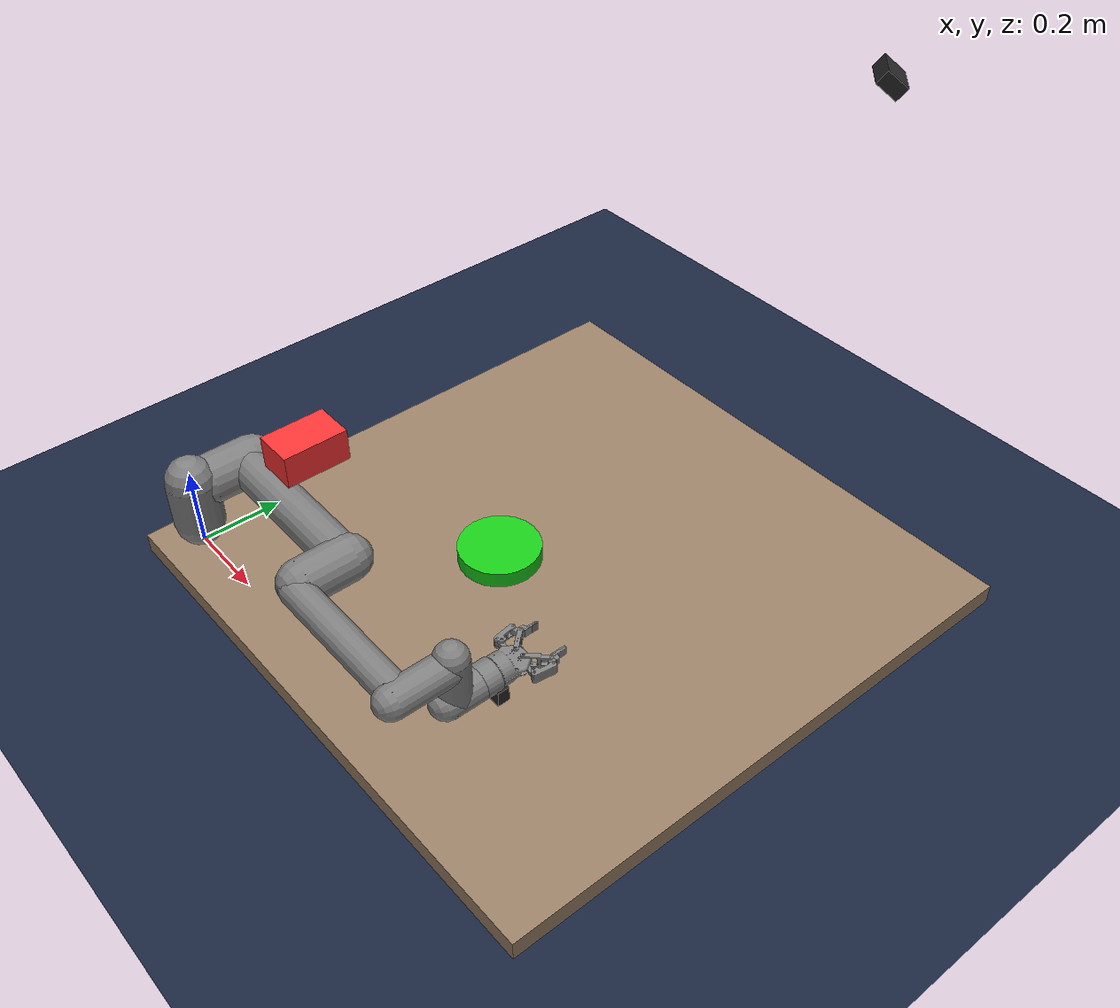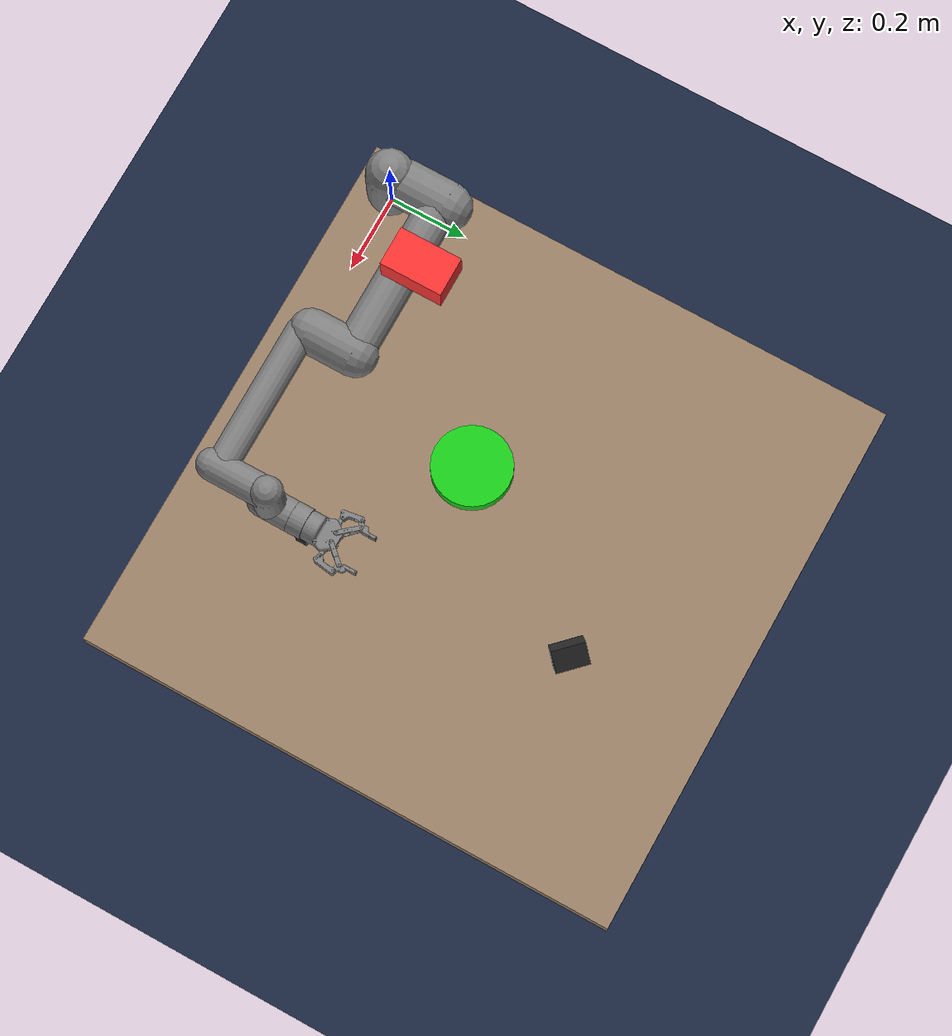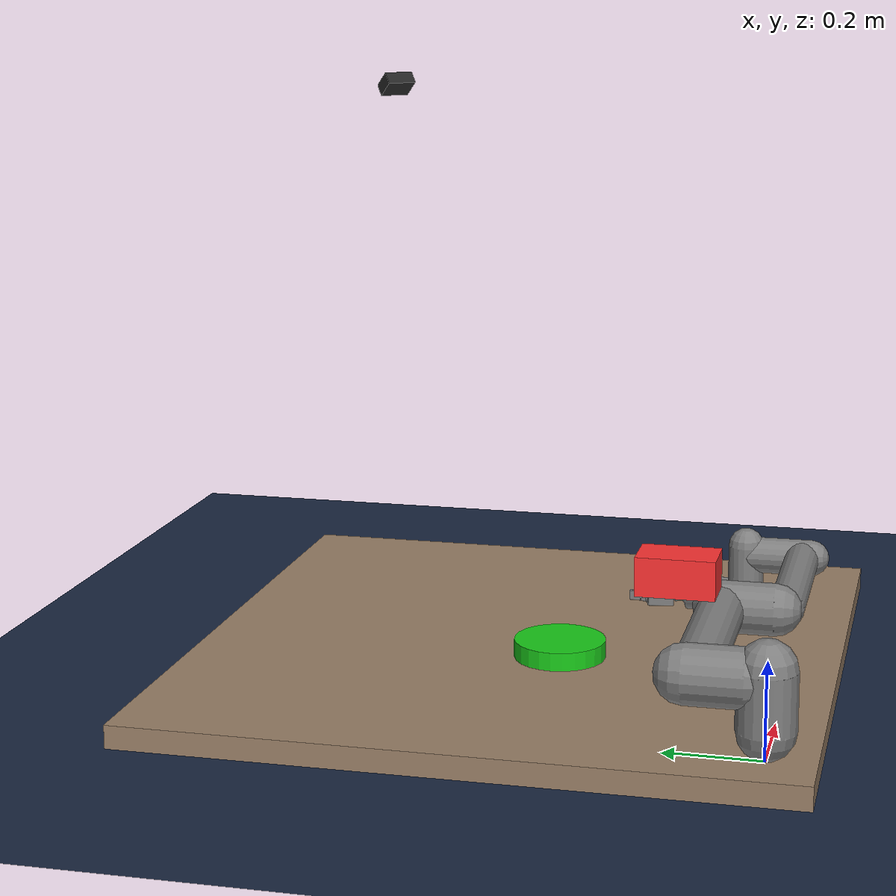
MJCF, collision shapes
<mujoco model="main scene">
  <include file="ur5e_gripper.xml" />

  <statistic center="0.3 0 0.4" extent="0.8" />

  <visual>
    <headlight diffuse="0.6 0.6 0.6" ambient="0.1 0.1 0.1" specular="0 0 0" />
    <rgba haze="0.15 0.25 0.35 1" />

    <global azimuth="120" elevation="-20" />
  </visual>

  <asset>
    <texture type="2d" name="groundplane" builtin="checker" mark="edge" rgb1="0.2 0.3 0.4"
      rgb2="0.1 0.2 0.3"
      markrgb="0.8 0.8 0.8" width="300" height="300" />
    <material name="groundplane" texture="groundplane" texuniform="true" texrepeat="5 5"
      reflectance="0.2" />
  </asset>

  <worldbody>
    <light pos="0 0 1.5" dir="0 0 -1" directional="true" specular="0 0 0" castshadow="false" />
    <geom name="floor" pos="0 0 -0.05" size="0 0 0.05" type="plane" rgba="0.1 0.15 0.25 1.0" />

    <!-- GoPro Camera Stand-->

    <!-- Scene Camera -->
    <body pos="1.0 1.0 1.2" xyaxes="0 1 0 0 0 1">
      <body euler="0 0.785398 0">

        <body euler="-0.9 0 0">

          <geom type="box"
            size="0.035 0.025 0.015"
            material="gray" contype="0" conaffinity="0" />

          <camera name="scene_camera"
            mode="fixed"
            fovy="90" />
        </body>
      </body>
    </body>

    <body name="work_table" pos="0.60 0.60 -0.025">
      <geom name="table_top" type="box" size="0.7 0.7 0.025" rgba="0.6 0.5 0.4 1" />
    </body>

    <body name="target_mocap" pos="0.5 0.5 0.02" mocap="true">
      <geom name="green_zone_cyl" type="cylinder" size="0.1 0.02" rgba="0.1 0.8 0.1 1.0" />

    </body>

    <body name="obstacle_1" pos="0.20 0.20 0.3">
      <geom name="obs1_box" type="box" size="0.05 0.08 0.04" rgba="1 0.2 0.2 1.0" />
    </body>

  </worldbody>
</mujoco>

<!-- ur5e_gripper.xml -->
<mujoco model="ur5e">
  <compiler angle="radian" />

  <option integrator="implicitfast" />

  <default>
    <default class="ur5e">
      <material specular="0.5" shininess="0.25" />
      <joint axis="0 1 0" range="-3.1415 3.1415" limited="false" armature="0.1" damping="0.1" />
      <general gaintype="fixed" biastype="affine" ctrlrange="-3.1415 3.1415" gainprm="4000"
        biasprm="0 -4000 -400" forcerange="-150 150" forcelimited="true" />
      <default class="size3">
        <default class="size3_limited">
          <joint range="-3.1415 3.1415" />
          <general ctrlrange="-3.1415 3.1415" />
        </default>
      </default>
      <default class="size1">
        <general gainprm="500" biasprm="0 -500 -100" forcerange="-28 28" forcelimited="true" />
      </default>
      <default class="ur5e_visual">
        <geom type="mesh" contype="0" conaffinity="0" group="2" />
      </default>
      <default class="ur5e_collision">
        <geom type="capsule" group="3" />
        <default class="eef_collision">
          <geom type="cylinder" />
        </default>
      </default>
      <site size="0.001" rgba="0.5 0.5 0.5 0.3" group="4" />

    </default>

    <default class="2f85">
      <mesh scale="0.001 0.001 0.001" />
      <general biastype="affine" />

      <joint axis="0 0 1" />
      <default class="driver">
        <joint range="0 0.9" armature="0.005" damping="0.1" solimplimit="0.95 0.99 0.001"
          solreflimit="0.005 1" />
      </default>
      <default class="follower">
        <joint range="-0.872664 0.9" armature="0.001" solimplimit="0.95 0.99 0.001"
          solreflimit="0.005 1" />
      </default>
      <default class="spring_link">
        <joint range="-0.29670597283 0.9" armature="0.001" stiffness="0.05" springref="2.62"
          damping="0.00125" />
      </default>
      <default class="coupler">
        <joint range="-1.57 0" armature="0.001" solimplimit="0.95 0.99 0.001" solreflimit="0.005 1" />
      </default>

      <default class="2f85_visual">
        <geom type="mesh" contype="0" conaffinity="0" group="2" material="black" />
      </default>

      <default class="2f85_collision">
        <geom type="mesh" group="3" />
        <default class="pad_box1">
          <geom mass="1e-6" type="box" pos="0.043258  0 0.12" size="0.002 0.011 0.009375"
            friction="2.0 0.1 0.001"
            solimp="0.95 0.99 0.001" solref="0.004 1" priority="1" rgba="0.55 0.55 0.55 1" />
        </default>
        <default class="pad_box2">
          <geom mass="1e-6" type="box" pos="0.043258 0 0.13875" size="0.002 0.011 0.009375"
            friction="2.0 0.1 0.001"
            solimp="0.95 0.99 0.001" solref="0.004 1" priority="1" rgba="0.45 0.45 0.45 1" />
        </default>
      </default>

      <default class="gopro_visual">
        <geom type="mesh" contype="0" conaffinity="0" density="0" group="2" />
      </default>
      <default class="gopro_collision">
        <geom type="mesh" group="3" />
      </default>

    </default>
  </default>

  <asset>
    <material class="ur5e" name="black" rgba="0.033 0.033 0.033 1" />
    <material class="ur5e" name="jointgray" rgba="0.278 0.278 0.278 1" />
    <material class="ur5e" name="linkgray" rgba="0.82 0.82 0.82 1" />
    <material class="ur5e" name="urblue" rgba="0.49 0.678 0.8 1" />

    <mesh file="ur5e/assets/base_0.obj" />
    <mesh file="ur5e/assets/base_1.obj" />
    <mesh file="ur5e/assets/shoulder_0.obj" />
    <mesh file="ur5e/assets/shoulder_1.obj" />
    <mesh file="ur5e/assets/shoulder_2.obj" />
    <mesh file="ur5e/assets/upperarm_0.obj" />
    <mesh file="ur5e/assets/upperarm_1.obj" />
    <mesh file="ur5e/assets/upperarm_2.obj" />
    <mesh file="ur5e/assets/upperarm_3.obj" />
    <mesh file="ur5e/assets/forearm_0.obj" />
    <mesh file="ur5e/assets/forearm_1.obj" />
    <mesh file="ur5e/assets/forearm_2.obj" />
    <mesh file="ur5e/assets/forearm_3.obj" />
    <mesh file="ur5e/assets/wrist1_0.obj" />
    <mesh file="ur5e/assets/wrist1_1.obj" />
    <mesh file="ur5e/assets/wrist1_2.obj" />
    <mesh file="ur5e/assets/wrist2_0.obj" />
    <mesh file="ur5e/assets/wrist2_1.obj" />
    <mesh file="ur5e/assets/wrist2_2.obj" />
    <mesh file="ur5e/assets/wrist3.obj" />

    <material name="metal" rgba="0.58 0.58 0.58 1" />
    <material name="silicone" rgba="0.1882 0.1882 0.1882 1" />
    <material name="gray" rgba="0.15 0.15 0.15 1" />

    <mesh file="robotiq_2f85_v4/assets/base.stl" />
    <mesh file="robotiq_2f85_v4/assets/base_coupling.stl" />
    <mesh file="robotiq_2f85_v4/assets/c-a01-85-open.stl" />
    <mesh file="robotiq_2f85_v4/assets/driver.stl" />
    <mesh file="robotiq_2f85_v4/assets/coupler.stl" />
    <mesh file="robotiq_2f85_v4/assets/spring_link.stl" />
    <mesh file="robotiq_2f85_v4/assets/follower.stl" />
    <mesh file="robotiq_2f85_v4/assets/tongue.stl" />

    <mesh file="umi_gripper/assets/gopro.stl" />

  </asset>

  <worldbody>
    <light name="spotlight" mode="targetbodycom" target="wrist_2_link" pos="0 -1 2" specular="0 0 0"
      castshadow="false" />

    <body name="base" pos="0 0 0" euler="0 0 0" childclass="ur5e" gravcomp="1">
      <inertial mass="4.0" pos="0 0 0" diaginertia="0.00443333156 0.00443333156 0.0072" />
      <geom mesh="base_0" material="black" class="ur5e_visual" />
      <geom mesh="base_1" material="jointgray" class="ur5e_visual" />
      <body name="shoulder_link" pos="0 0 0.163" gravcomp="1">
        <inertial mass="3.7" pos="0 0 0" diaginertia="0.0102675 0.0102675 0.00666" />
        <joint name="shoulder_pan_joint" class="size3" axis="0 0 1" />
        <geom mesh="shoulder_0" material="urblue" class="ur5e_visual" />
        <geom mesh="shoulder_1" material="black" class="ur5e_visual" />
        <geom mesh="shoulder_2" material="jointgray" class="ur5e_visual" />
        <geom class="ur5e_collision" size="0.06 0.06" pos="0 0 -0.04" />
        <body name="upper_arm_link" pos="0 0.138 0" quat="1 0 1 0" gravcomp="1">
          <inertial mass="8.393" pos="0 0 0.2125" diaginertia="0.133886 0.133886 0.0151074" />
          <joint name="shoulder_lift_joint" class="size3" />
          <geom mesh="upperarm_0" material="linkgray" class="ur5e_visual" />
          <geom mesh="upperarm_1" material="black" class="ur5e_visual" />
          <geom mesh="upperarm_2" material="jointgray" class="ur5e_visual" />
          <geom mesh="upperarm_3" material="urblue" class="ur5e_visual" />
          <geom class="ur5e_collision" pos="0 -0.04 0" quat="1 1 0 0" size="0.06 0.06" />
          <geom class="ur5e_collision" size="0.05 0.2" pos="0 0 0.2" />
          <body name="forearm_link" pos="0 -0.131 0.425" gravcomp="1">
            <inertial mass="2.275" pos="0 0 0.196" diaginertia="0.0311796 0.0311796 0.004095" />
            <joint name="elbow_joint" class="size3_limited" />
            <geom mesh="forearm_0" material="urblue" class="ur5e_visual" />
            <geom mesh="forearm_1" material="linkgray" class="ur5e_visual" />
            <geom mesh="forearm_2" material="black" class="ur5e_visual" />
            <geom mesh="forearm_3" material="jointgray" class="ur5e_visual" />
            <geom class="ur5e_collision" pos="0 0.08 0" quat="1 1 0 0" size="0.055 0.06" />
            <geom class="ur5e_collision" size="0.038 0.19" pos="0 0 0.2" />
            <body name="wrist_1_link" pos="0 0 0.392" quat="1 0 1 0" gravcomp="1">
              <inertial mass="1.219" pos="0 0.127 0" diaginertia="0.0025599 0.0025599 0.0021942" />
              <joint name="wrist_1_joint" class="size1" />
              <geom mesh="wrist1_0" material="black" class="ur5e_visual" />
              <geom mesh="wrist1_1" material="urblue" class="ur5e_visual" />
              <geom mesh="wrist1_2" material="jointgray" class="ur5e_visual" />
              <geom class="ur5e_collision" pos="0 0.05 0" quat="1 1 0 0" size="0.04 0.07" />
              <body name="wrist_2_link" pos="0 0.127 0" gravcomp="1">
                <inertial mass="1.219" pos="0 0 0.1" diaginertia="0.0025599 0.0025599 0.0021942" />
                <joint name="wrist_2_joint" axis="0 0 1" class="size1" />
                <geom mesh="wrist2_0" material="black" class="ur5e_visual" />
                <geom mesh="wrist2_1" material="urblue" class="ur5e_visual" />
                <geom mesh="wrist2_2" material="jointgray" class="ur5e_visual" />
                <geom class="ur5e_collision" size="0.04 0.06" pos="0 0 0.04" />
                <geom class="ur5e_collision" pos="0 0.02 0.1" quat="1 1 0 0" size="0.04 0.04" />
                <body name="wrist_3_link" pos="0 0 0.1" gravcomp="1">
                  <inertial mass="0.1889" pos="0 0.0771683 0" quat="1 0 0 1"
                    diaginertia="0.000132134 9.90863e-05 9.90863e-05" />
                  <joint name="wrist_3_joint" class="size1" />
                  <geom material="linkgray" mesh="wrist3" class="ur5e_visual" />
                  <geom class="eef_collision" pos="0 0.08 0" quat="1 1 0 0" size="0.04 0.02" />
                  <site name="attachment_site" pos="0 0.1 0" quat="-1 1 0 0" />
                  <site name="gripper_center" pos="0 0.25 0" />

                  <!-- GoPro Camera -->
                  <geom pos="0.0 0.1 0.05" xyaxes="1 0 0 0 0 1" type="box"
                    size="0.035 0.025 0.015"
                    material="gray" contype="0" conaffinity="0" />

                  <camera name="wrist_camera" pos="0.0 0.125 0.05" xyaxes="1 0 0 0 0 1"
                    mode="fixed"
                    fovy="60" />

                  <body name="2f85_base" pos="0 0.1 0" quat="-1 1 0 0" childclass="2f85">
                    <inertial mass="0.777441" pos="7.77116e-05 8.42713e-05 0.0311656"
                      quat="0.704758 -0.00373684 -0.00570287 0.709415"
                      diaginertia="0.000260285 0.000225381 0.000152708" />
                    <geom class="2f85_visual" pos="0 0 0.0108" quat="0 0 0 1" mesh="base" />
                    <geom class="2f85_visual" pos="0 0 0.004" quat="1 -1 0 0" mesh="base_coupling" />
                    <geom class="2f85_visual" pos="0 0 0.0108" quat="1 0 0 0" material="metal"
                      mesh="c-a01-85-open" />
                    <geom class="2f85_collision" mesh="base" />
                    <!-- Left-hand side 4-bar linkage -->
                    <body name="left_driver" pos="-0.0306011 0.00475 0.0657045" quat="1 -1 0 0">
                      <inertial mass="0.00899563" pos="-0.0175297 0.00165308 -0.00469625"
                        quat="-0.469642 0.469642 -0.528617 0.528617"
                        diaginertia="1.72352e-06 1.60906e-06 3.22006e-07" />
                      <joint name="left_driver_joint" class="driver" />
                      <geom class="2f85_visual" pos="0.0306011 0.0549045 -0.0047" quat="1 1 0 0"
                        material="metal" mesh="driver" />
                      <geom class="2f85_collision" pos="0.0306011 0.0549045 -0.0047" quat="1 1 0 0"
                        mesh="driver" />
                      <body name="left_coupler" pos="-0.0314249 0.00453223 -0.0102" quat="0 0 0 1">
                        <inertial mass="0.0140974" pos="0.00367747 0.01986 0.0055"
                          quat="0.701447 -0.701447 0.0892884 -0.0892884"
                          diaginertia="4.16206e-06 3.52216e-06 8.88131e-07" />
                        <geom class="2f85_visual" pos="-0.062026 -0.0503723 0.0055" quat="1 -1 0 0"
                          mesh="coupler" />
                        <geom class="2f85_collision" pos="-0.062026 -0.0503723 0.0055"
                          quat="1 -1 0 0"
                          mesh="coupler" />
                      </body>
                    </body>
                    <body name="left_spring_link" pos="-0.0127 -0.012 0.07222" quat="1 -1 0 0">
                      <inertial mass="0.0221642" pos="-0.0183 -0.0205732 0.01205"
                        quat="0.660941 0.660941 -0.251309 -0.251309"
                        diaginertia="8.96853e-06 6.71733e-06 2.63931e-06" />
                      <joint name="left_spring_link_joint" class="spring_link" />
                      <geom class="2f85_visual" pos="0.0127 0.06142 0.01205" quat="1 1 0 0"
                        type="mesh"
                        mesh="spring_link" />
                      <geom class="2f85_collision" pos="0.0127 0.06142 0.01205" quat="1 1 0 0"
                        type="mesh" mesh="spring_link" />
                      <body name="left_follower" pos="-0.0382079 -0.0425003 0.00295"
                        quat="0 -1 -1.90231e-05 0">
                        <inertial mass="0.0125222" pos="-0.00852976 -0.0014822 -0.00910001"
                          quat="0.359439 0.359439 0.608937 0.608937"
                          diaginertia="2.67415e-06 2.4559e-06 6.02031e-07" />
                        <joint name="left_follower" class="follower" />
                        <geom class="2f85_visual" pos="0.0509079 -0.10392 -0.0091" quat="1 -1 0 0"
                          type="mesh" mesh="follower" />
                        <geom class="2f85_visual" pos="0.0509079 -0.10392 -0.0091" quat="1 -1 0 0"
                          type="mesh" material="metal" mesh="tongue" />
                        <geom class="2f85_collision" pos="0.0509079 -0.10392 -0.0091"
                          quat="1 -1 0 0"
                          type="mesh" mesh="follower" />
                        <geom class="2f85_collision" pos="0.0509079 -0.10392 -0.0091"
                          quat="1 -1 0 0"
                          type="mesh" mesh="tongue" />
                        <body name="left_pad" pos="-0.0377897 -0.103916 -0.0091" quat="1 -1 0 0">
                          <geom class="pad_box1" name="left_pad1" />
                          <geom class="pad_box2" name="left_pad2" />
                        </body>
                      </body>
                    </body>
                    <!-- Right-hand side 4-bar linkage -->
                    <body name="right_driver" pos="0.0306011 -0.00475 0.0657045" quat="0 0 -1 1">
                      <inertial mass="0.00899563" pos="-0.0175297 0.00165308 -0.00469625"
                        quat="-0.469642 0.469642 -0.528617 0.528617"
                        diaginertia="1.72352e-06 1.60906e-06 3.22006e-07" />
                      <joint name="right_driver_joint" class="driver" />
                      <geom class="2f85_visual" pos="0.0306011 0.0549045 -0.0047" quat="1 1 0 0"
                        material="metal" mesh="driver" />
                      <geom class="2f85_collision" pos="0.0306011 0.0549045 -0.0047" quat="1 1 0 0"
                        mesh="driver" />
                      <body name="right_coupler" pos="-0.0314249 0.00453223 -0.0102" quat="0 0 0 1">
                        <inertial mass="0.0140974" pos="0.00367747 0.01986 0.0055"
                          quat="0.701447 -0.701447 0.0892884 -0.0892884"
                          diaginertia="4.16206e-06 3.52216e-06 8.88131e-07" />
                        <geom class="2f85_visual" pos="-0.062026 -0.0503723 0.0055" quat="1 -1 0 0"
                          mesh="coupler" />
                        <geom class="2f85_collision" pos="-0.062026 -0.0503723 0.0055"
                          quat="1 -1 0 0"
                          mesh="coupler" />
                      </body>
                    </body>
                    <body name="right_spring_link" pos="0.0127 0.012 0.07222" quat="0 0 -1 1">
                      <inertial mass="0.0221642" pos="-0.0183 -0.0205732 0.01205"
                        quat="0.660941 0.660941 -0.251309 -0.251309"
                        diaginertia="8.96853e-06 6.71733e-06 2.63931e-06" />
                      <joint name="right_spring_link_joint" class="spring_link" />
                      <geom class="2f85_visual" pos="0.0127 0.06142 0.01205" quat="1 1 0 0"
                        mesh="spring_link" />
                      <geom class="2f85_collision" pos="0.0127 0.06142 0.01205" quat="1 1 0 0"
                        mesh="spring_link" />
                      <body name="right_follower" pos="-0.0382079 -0.0425003 0.00295"
                        quat="0 -1 0 0">
                        <inertial mass="0.0125222" pos="-0.00852976 -0.0014822 -0.00910001"
                          quat="0.359439 0.359439 0.608937 0.608937"
                          diaginertia="2.67415e-06 2.4559e-06 6.02031e-07" />
                        <joint name="right_follower_joint" class="follower" />
                        <geom class="2f85_visual" pos="0.0509079 -0.10392 -0.0091" quat="1 -1 0 0"
                          material="metal" mesh="tongue" />
                        <geom class="2f85_visual" pos="0.0509079 -0.10392 -0.0091" quat="1 -1 0 0"
                          mesh="follower" />
                        <geom class="2f85_collision" pos="0.0509079 -0.10392 -0.0091"
                          quat="1 -1 0 0"
                          mesh="tongue" />
                        <geom class="2f85_collision" pos="0.0509079 -0.10392 -0.0091"
                          quat="1 -1 0 0"
                          mesh="follower" />
                        <body name="right_pad" pos="-0.0377897 -0.103916 -0.0091" quat="1 -1 0 0">
                          <geom class="pad_box1" name="right_pad1" />
                          <geom class="pad_box2" name="right_pad2" />
                        </body>
                      </body>
                    </body>
                  </body>

                </body>
              </body>
            </body>
          </body>
        </body>
      </body>
    </body>
  </worldbody>

  <contact>
    <exclude body1="2f85_base" body2="left_driver" />
    <exclude body1="2f85_base" body2="right_driver" />
    <exclude body1="2f85_base" body2="left_spring_link" />
    <exclude body1="2f85_base" body2="right_spring_link" />
    <exclude body1="right_coupler" body2="right_follower" />
    <exclude body1="left_coupler" body2="left_follower" />
  </contact>

  <tendon>
    <fixed name="split">
      <joint joint="right_driver_joint" coef="0.485" />
      <joint joint="left_driver_joint" coef="0.485" />
    </fixed>
  </tendon>

  <equality>
    <connect anchor="-0.0179014 -0.00651468 0.0044" body1="right_follower" body2="right_coupler"
      solimp="0.95 0.99 0.001" solref="0.005 1" />
    <connect anchor="-0.0179014 -0.00651468 0.0044" body1="left_follower" body2="left_coupler"
      solimp="0.95 0.99 0.001" solref="0.005 1" />
    <joint joint1="right_driver_joint" joint2="left_driver_joint" polycoef="0 1 0 0 0"
      solimp="0.95 0.99 0.001"
      solref="0.005 1" />
  </equality>

  <actuator>
    <general class="size3" name="shoulder_pan" joint="shoulder_pan_joint" />
    <general class="size3" name="shoulder_lift" joint="shoulder_lift_joint" />
    <general class="size3_limited" name="elbow" joint="elbow_joint" />
    <general class="size1" name="wrist_1" joint="wrist_1_joint" />
    <general class="size1" name="wrist_2" joint="wrist_2_joint" />
    <general class="size1" name="wrist_3" joint="wrist_3_joint" />

    <general class="2f85" name="fingers_actuator" tendon="split" forcerange="-5 5"
      ctrlrange="0
    255"
      gainprm="0.3137255 0 0" biasprm="0 -100 -10" />
  </actuator>

  <keyframe>
    <key name="home1" qpos="0.7 -0.0 -2.43 -1.2 1.5708 3.1415" />
  </keyframe>
</mujoco>
